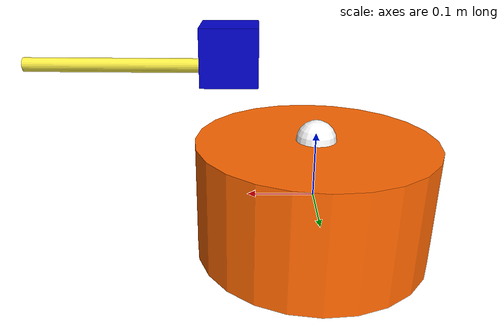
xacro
<?xml version="1.0"?>
<robot name="mbot" xmlns:xacro="http://www.ros.org/wiki/xacro">

    <!-- PROPERTY LIST -->
    <xacro:property name="width" value="0.18" />
    <xacro:property name="polelen" value="0.25" />
    <xacro:property name="bodylen" value="0.16" />
    <xacro:property name="baselen" value="0.16" />
    <xacro:property name="wheeldiam" value="0.07" />

    <xacro:property name="M_PI" value="3.1415926"/>
    <xacro:property name="base_mass"   value="20" />
    <xacro:property name="base_radius" value="0.20"/>
    <xacro:property name="base_length" value="0.16"/>

    <xacro:property name="wheel_mass"   value="2" />
    <xacro:property name="wheel_radius" value="0.06"/>
    <xacro:property name="wheel_length" value="0.025"/>
    <xacro:property name="wheel_joint_y" value="0.19"/>
    <xacro:property name="wheel_joint_z" value="0.05"/>

    <xacro:property name="caster_mass"    value="0.5" />
    <xacro:property name="caster_radius"  value="0.015"/>
    <!-- wheel_radius - ( base_length/2 - wheel_joint_z) -->
    <xacro:property name="caster_joint_x" value="0.18"/>
    <xacro:property name="bodylen" value="0.18" />

    <!-- Defining the colors used in this robot -->
    <material name="yellow">
        <color rgba="1 0.4 0 1"/>
    </material>
    <material name="gray">
        <color rgba="0.75 0.75 0.75 1"/>
    </material>
    <material name="blue">
      <color rgba="0 0 0.8 1"/>
    </material>
    <material name="black">
      <color rgba="0 0 0 1"/>
    </material>
    <material name="white">
      <color rgba="1 1 1 1"/>
    </material>

    <!-- Macro for inertia matrix -->
    <xacro:macro name="default_inertial" params="mass">
      <inertial>
        <mass value="${mass}" />
        <inertia ixx="1.0" ixy="0.0" ixz="0.0" iyy="1.0" iyz="0.0" izz="1.0" />
      </inertial>
    </xacro:macro>
    <xacro:macro name="sphere_inertial_matrix" params="m r">
        <inertial>
            <mass value="${m}" />
            <inertia ixx="${2*m*r*r/5}" ixy="0" ixz="0"
                iyy="${2*m*r*r/5}" iyz="0"
                izz="${2*m*r*r/5}" />
        </inertial>
    </xacro:macro>

    <xacro:macro name="cylinder_inertial_matrix" params="m r h">
        <inertial>
            <mass value="${m}" />
            <inertia ixx="${m*(3*r*r+h*h)/12}" ixy = "0" ixz = "0"
                iyy="${m*(3*r*r+h*h)/12}" iyz = "0"
                izz="${m*r*r/2}" />
        </inertial>
    </xacro:macro>
    <link name="base_link">
      <visual>
        <geometry>
          <cylinder radius="${width}" length="${bodylen}"/>
        </geometry>
        <material name="yellow"/>
      </visual>
      <collision>
        <geometry>
          <cylinder radius="${width}" length="${bodylen}"/>
        </geometry>
      </collision>
      <xacro:default_inertial mass="10"/>
    </link>

  <joint name="gripper_extension" type="prismatic">
    <parent link="base_link"/>
    <child link="gripper_pole"/>
    <limit effort="1000.0" lower="-${width*2-.02}" upper="0" velocity="0.5"/>
    <origin rpy="0 0 0" xyz="${width-.01} 0 0.2"/>
  </joint>

  <link name="head">
    <visual>
      <geometry>
        <sphere radius="0.03"/>
      </geometry>
      <material name="white"/>
    </visual>
    <collision>
      <geometry>
        <sphere radius="0.03"/>
      </geometry>
    </collision>
    <xacro:default_inertial mass="2"/>
  </link>

  <joint name="head_swivel" type="continuous">
    <parent link="base_link"/>
    <child link="head"/>
    <axis xyz="0 0 1"/>
    <origin xyz="0 0 ${bodylen/2}"/>
  </joint>

  <link name="box">
    <visual>
      <geometry>
        <box size="0.08 0.08 0.08"/>
      </geometry>
      <material name="blue"/>
      <origin xyz="-0.04 0 0"/>
    </visual>
    <collision>
      <geometry>
        <box size="0.08 0.08 0.08"/>
      </geometry>
    </collision>
    <xacro:default_inertial mass="1"/>
  </link>

  <joint name="tobox" type="fixed">
    <parent link="head"/>
    <child link="box"/>
    <origin xyz="${.707*width+0.04} 0 ${.707*width}"/>
  </joint>

  <link name="gripper_pole">
    <visual>
      <geometry>
        <cylinder length="${polelen}" radius="0.01"/>
      </geometry>
      <origin xyz="${polelen/2} 0 0" rpy="0 ${pi/2} 0 "/>
    </visual>
    <collision>
      <geometry>
        <cylinder length="${polelen}" radius="0.01"/>
      </geometry>
      <origin xyz="${polelen/2} 0 0" rpy="0 ${pi/2} 0 "/>
    </collision>
    <xacro:default_inertial mass="0.05"/>
  </link>

  <xacro:macro name="gripper" params="prefix reflect">
    <joint name="${prefix}_gripper_joint" type="revolute">
      <axis xyz="0 0 ${reflect}"/>
      <limit effort="1000.0" lower="0.0" upper="0.548" velocity="0.5"/>
      <origin rpy="0 0 0" xyz="${polelen} ${reflect*0.01} 0"/>
      <parent link="gripper_pole"/>
      <child link="${prefix}_gripper"/>
    </joint>
    <link name="${prefix}_gripper">
      <visual>
        <origin rpy="${(reflect-1)/2*pi} 0 0" xyz="0 0 0"/>
        <geometry>
          <mesh filename="package://urdf_tutorial/meshes/l_finger.dae"/>
        </geometry>
      </visual>
      <collision>
        <geometry>
          <mesh filename="package://urdf_tutorial/meshes/l_finger.dae"/>
        </geometry>
        <origin rpy="${(reflect-1)/2*pi} 0 0" xyz="0 0 0"/>
      </collision>
      <xacro:default_inertial mass="0.05"/>
    </link>

    <joint name="${prefix}_tip_joint" type="fixed">
      <parent link="${prefix}_gripper"/>
      <child link="${prefix}_tip"/>
    </joint>
    <link name="${prefix}_tip">
      <visual>
        <origin rpy="${(reflect-1)/2*pi} 0 0" xyz="0.09137 0.00495 0"/>
        <geometry>
          <mesh filename="package://urdf_tutorial/meshes/l_finger_tip.dae"/>
        </geometry>
      </visual>
      <collision>
        <geometry>
          <mesh filename="package://urdf_tutorial/meshes/l_finger_tip.dae"/>
        </geometry>
        <origin rpy="${(reflect-1)/2*pi} 0 0" xyz="0.09137 0.00495 0"/>
      </collision>
      <xacro:default_inertial mass="0.05"/>
    </link>
  </xacro:macro>

    <!-- Macro for robot wheel -->
    <xacro:macro name="wheel" params="prefix reflect">
        <joint name="${prefix}_wheel_joint" type="continuous">
            <origin xyz="0 ${reflect*wheel_joint_y} ${-wheel_joint_z}" rpy="0 0 0"/>
            <parent link="base_link"/>
            <child link="${prefix}_wheel_link"/>
            <axis xyz="0 1 0"/>
        </joint>

        <link name="${prefix}_wheel_link">
            <visual>
                <origin xyz="0 0 0" rpy="${M_PI/2} 0 0" />
                <geometry>
                    <cylinder radius="${wheel_radius}" length = "${wheel_length}"/>
                </geometry>
                <material name="gray" />
            </visual>
            <collision>
                <origin xyz="0 0 0" rpy="${M_PI/2} 0 0" />
                <geometry>
                    <cylinder radius="${wheel_radius}" length = "${wheel_length}"/>
                </geometry>
            </collision>
            <cylinder_inertial_matrix  m="${wheel_mass}" r="${wheel_radius}" h="${wheel_length}" />
        </link>

        <gazebo reference="${prefix}_wheel_link">
            <material>Gazebo/Gray</material>
        </gazebo>

        <!-- Transmission is important to link the joints and the controller -->
        <transmission name="${prefix}_wheel_joint_trans">
            <type>transmission_interface/SimpleTransmission</type>
            <joint name="${prefix}_wheel_joint" >
                <hardwareInterface>hardware_interface/VelocityJointInterface</hardwareInterface>
            </joint>
            <actuator name="${prefix}_wheel_joint_motor">
                <hardwareInterface>hardware_interface/VelocityJointInterface</hardwareInterface>
                <mechanicalReduction>1</mechanicalReduction>
            </actuator>
        </transmission>
    </xacro:macro>

    <!-- Macro for robot caster -->
    <xacro:macro name="caster" params="prefix reflect">
        <joint name="${prefix}_caster_joint" type="continuous">
            <origin xyz="${reflect*caster_joint_x} 0 ${-(base_length/2 + caster_radius)}" rpy="0 0 0"/>
            <parent link="base_link"/>
            <child link="${prefix}_caster_link"/>
            <axis xyz="0 1 0"/>
        </joint>

        <link name="${prefix}_caster_link">
            <visual>
                <origin xyz="0 0 0" rpy="0 0 0"/>
                <geometry>
                    <sphere radius="${caster_radius}" />
                </geometry>
                <material name="black" />
            </visual>
            <collision>
                <origin xyz="0 0 0" rpy="0 0 0"/>
                <geometry>
                    <sphere radius="${caster_radius}" />
                </geometry>
            </collision>
            <sphere_inertial_matrix  m="${caster_mass}" r="${caster_radius}" />
        </link>

        <gazebo reference="${prefix}_caster_link">
            <material>Gazebo/Black</material>
        </gazebo>
    </xacro:macro>

    <xacro:macro name="mbot_base_gazebo">
        <link name="base_footprint">
            <visual>
                <origin xyz="0 0 0" rpy="0 0 0" />
                <geometry>
                    <box size="0.001 0.001 0.001" />
                </geometry>
            </visual>
        </link>
        <gazebo reference="base_footprint">
            <turnGravityOff>false</turnGravityOff>
        </gazebo>

        <joint name="base_footprint_joint" type="fixed">
            <origin xyz="0 0 ${base_length/2 + caster_radius*2}" rpy="0 0 0" />
            <parent link="base_footprint"/>
            <child link="base_link" />
        </joint>

        <gazebo reference="base_link">
            <material>Gazebo/Blue</material>
        </gazebo>

        <wheel prefix="left"  reflect="-1"/>
        <wheel prefix="right" reflect="1"/>

        <caster prefix="front" reflect="-1"/>
        <caster prefix="back"  reflect="1"/>

        <!-- controller -->
        <gazebo>
            <plugin name="differential_drive_controller"
                    filename="libgazebo_ros_diff_drive.so">
                <rosDebugLevel>Debug</rosDebugLevel>
                <publishWheelTF>true</publishWheelTF>
                <robotNamespace>/</robotNamespace>
                <publishTf>1</publishTf>
                <publishWheelJointState>true</publishWheelJointState>
                <alwaysOn>true</alwaysOn>
                <updateRate>100.0</updateRate>
                <legacyMode>true</legacyMode>
                <leftJoint>left_wheel_joint</leftJoint>
                <rightJoint>right_wheel_joint</rightJoint>
                <wheelSeparation>${wheel_joint_y*2}</wheelSeparation>
                <wheelDiameter>${2*wheel_radius}</wheelDiameter>
                <broadcastTF>1</broadcastTF>
                <wheelTorque>30</wheelTorque>
                <wheelAcceleration>1.8</wheelAcceleration>
                <commandTopic>cmd_vel</commandTopic>
                <odometryFrame>odom</odometryFrame>
                <odometryTopic>odom</odometryTopic>
                <robotBaseFrame>base_footprint</robotBaseFrame>
            </plugin>
        </gazebo>
    </xacro:macro>

</robot>
